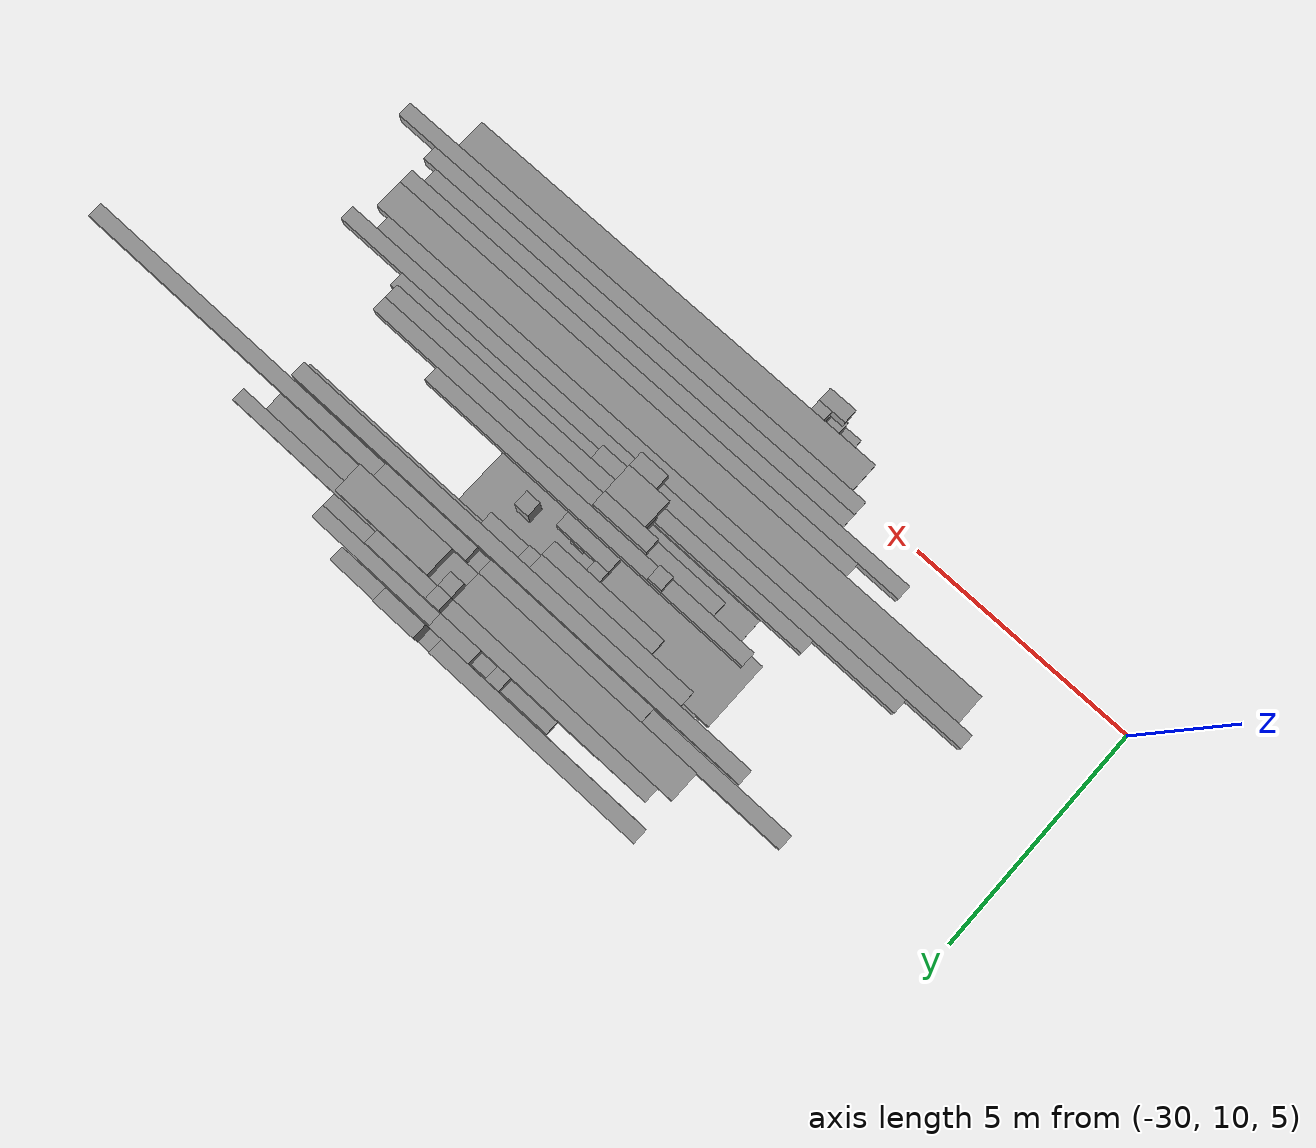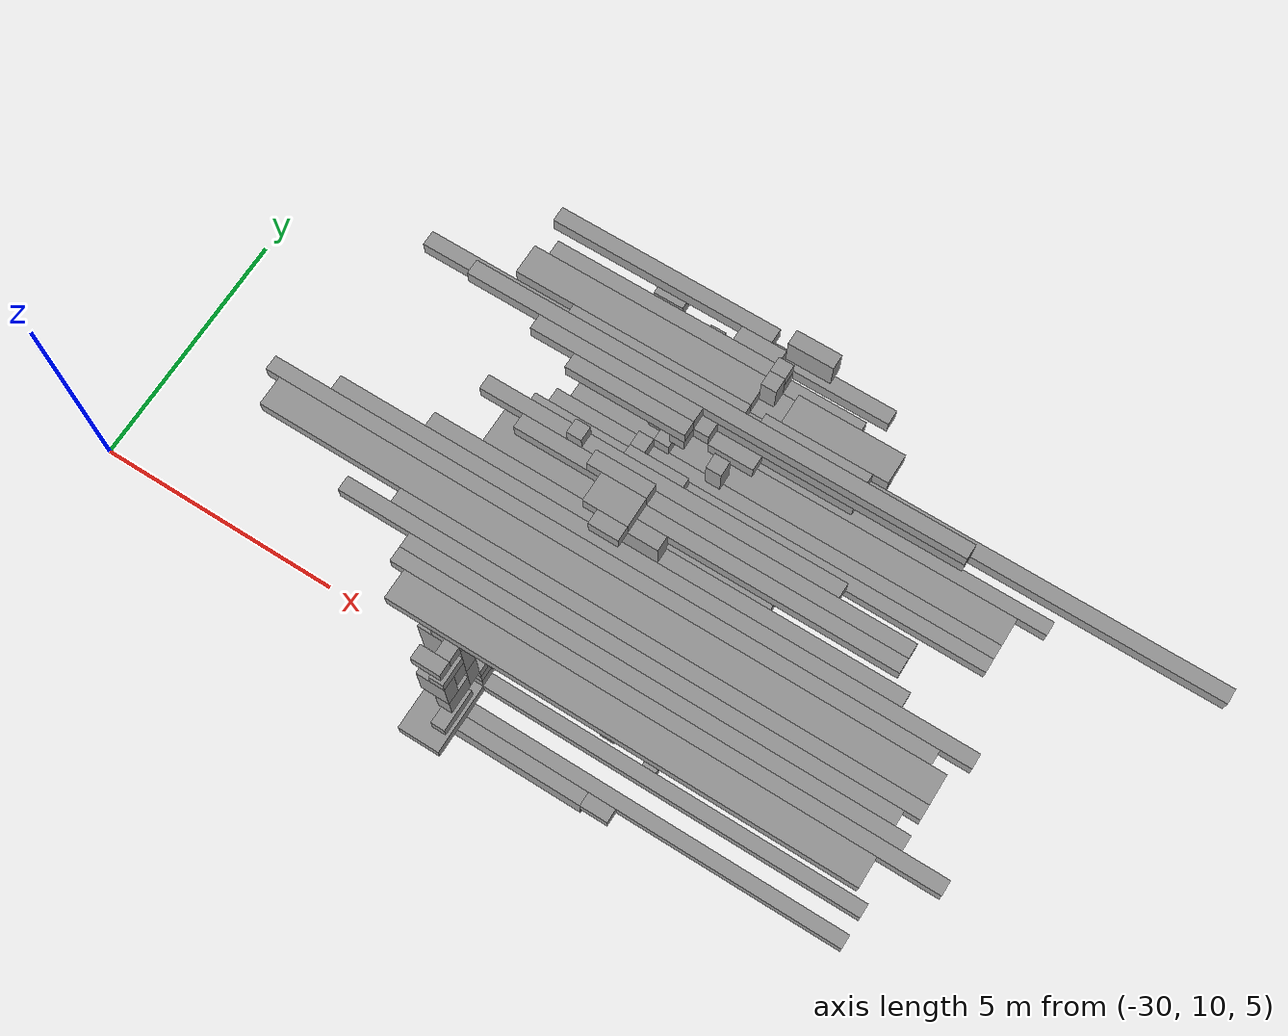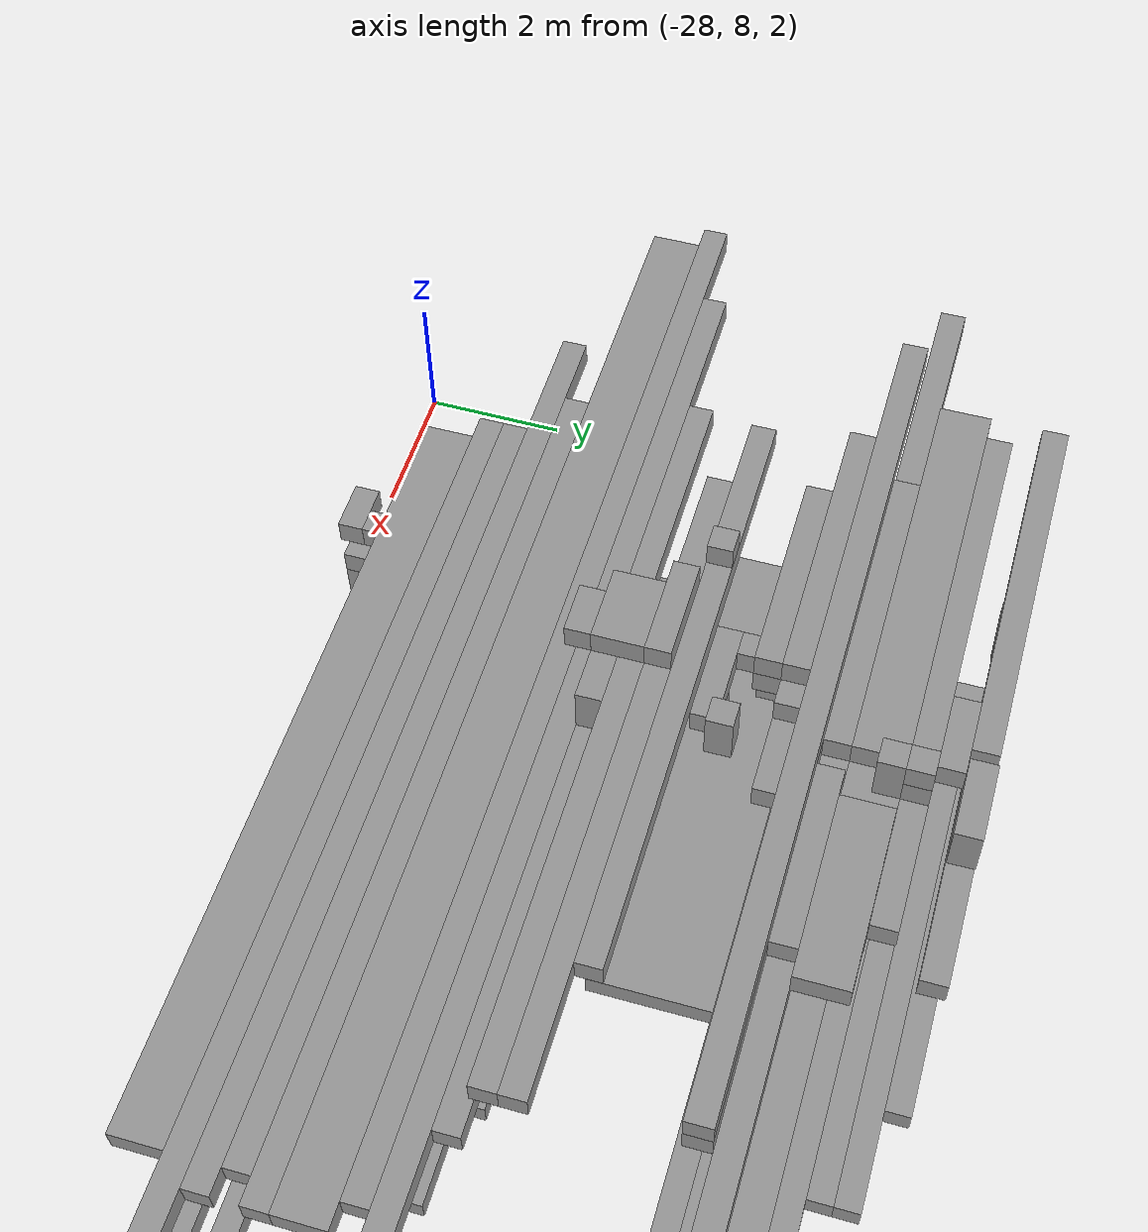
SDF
<sdf version="1.6">
 <world name="bt_world">
  <include><uri>model://sun</uri></include>
  <model name="obstacle_160">
   <static>true</static>
   <pose>-20.849999999999998 12.45 7.05 0 0 0</pose>
   <link name="link">
    <collision name="collision"><geometry><box><size>13.5 0.3 0.3</size></box></geometry></collision>
    <visual name="visual">
     <geometry><box><size>13.5 0.3 0.3</size></box></geometry>
     <material><ambient>0.5 0.5 0.5 1</ambient><diffuse>0.6 0.6 0.6 1</diffuse></material>
    </visual>
   </link>
  </model>
  <model name="obstacle_174">
   <static>true</static>
   <pose>-20.55 12.0 7.05 0 0 0</pose>
   <link name="link">
    <collision name="collision"><geometry><box><size>13.5 0.6 0.3</size></box></geometry></collision>
    <visual name="visual">
     <geometry><box><size>13.5 0.6 0.3</size></box></geometry>
     <material><ambient>0.5 0.5 0.5 1</ambient><diffuse>0.6 0.6 0.6 1</diffuse></material>
    </visual>
   </link>
  </model>
  <model name="obstacle_203">
   <static>true</static>
   <pose>-19.95 12.75 7.05 0 0 0</pose>
   <link name="link">
    <collision name="collision"><geometry><box><size>12.9 0.3 0.3</size></box></geometry></collision>
    <visual name="visual">
     <geometry><box><size>12.9 0.3 0.3</size></box></geometry>
     <material><ambient>0.5 0.5 0.5 1</ambient><diffuse>0.6 0.6 0.6 1</diffuse></material>
    </visual>
   </link>
  </model>
  <model name="obstacle_205">
   <static>true</static>
   <pose>-18.45 15.75 7.6499999999999995 0 0 0</pose>
   <link name="link">
    <collision name="collision">
     <geometry><box><size>15.899999999999999 0.3 0.3</size></box></geometry>
    </collision>
    <visual name="visual">
     <geometry><box><size>15.899999999999999 0.3 0.3</size></box></geometry>
     <material><ambient>0.5 0.5 0.5 1</ambient><diffuse>0.6 0.6 0.6 1</diffuse></material>
    </visual>
   </link>
  </model>
  <model name="obstacle_272">
   <static>true</static>
   <pose>-19.65 11.25 7.05 0 0 0</pose>
   <link name="link">
    <collision name="collision"><geometry><box><size>11.1 0.3 0.3</size></box></geometry></collision>
    <visual name="visual">
     <geometry><box><size>11.1 0.3 0.3</size></box></geometry>
     <material><ambient>0.5 0.5 0.5 1</ambient><diffuse>0.6 0.6 0.6 1</diffuse></material>
    </visual>
   </link>
  </model>
  <model name="obstacle_276">
   <static>true</static>
   <pose>-20.25 15.45 8.25 0 0 0</pose>
   <link name="link">
    <collision name="collision"><geometry><box><size>9.9 0.3 0.3</size></box></geometry></collision>
    <visual name="visual">
     <geometry><box><size>9.9 0.3 0.3</size></box></geometry>
     <material><ambient>0.5 0.5 0.5 1</ambient><diffuse>0.6 0.6 0.6 1</diffuse></material>
    </visual>
   </link>
  </model>
  <model name="obstacle_357">
   <static>true</static>
   <pose>-19.8 13.049999999999999 7.05 0 0 0</pose>
   <link name="link">
    <collision name="collision"><geometry><box><size>9.6 0.3 0.3</size></box></geometry></collision>
    <visual name="visual">
     <geometry><box><size>9.6 0.3 0.3</size></box></geometry>
     <material><ambient>0.5 0.5 0.5 1</ambient><diffuse>0.6 0.6 0.6 1</diffuse></material>
    </visual>
   </link>
  </model>
  <model name="obstacle_359">
   <static>true</static>
   <pose>-22.2 16.2 7.949999999999999 0 0 0</pose>
   <link name="link">
    <collision name="collision"><geometry><box><size>4.8 0.6 0.3</size></box></geometry></collision>
    <visual name="visual">
     <geometry><box><size>4.8 0.6 0.3</size></box></geometry>
     <material><ambient>0.5 0.5 0.5 1</ambient><diffuse>0.6 0.6 0.6 1</diffuse></material>
    </visual>
   </link>
  </model>
  <model name="obstacle_360">
   <static>true</static>
   <pose>-22.349999999999998 17.25 7.949999999999999 0 0 0</pose>
   <link name="link">
    <collision name="collision"><geometry><box><size>4.5 0.3 0.3</size></box></geometry></collision>
    <visual name="visual">
     <geometry><box><size>4.5 0.3 0.3</size></box></geometry>
     <material><ambient>0.5 0.5 0.5 1</ambient><diffuse>0.6 0.6 0.6 1</diffuse></material>
    </visual>
   </link>
  </model>
  <model name="obstacle_391">
   <static>true</static>
   <pose>-19.05 11.549999999999999 7.05 0 0 0</pose>
   <link name="link">
    <collision name="collision"><geometry><box><size>10.5 0.3 0.3</size></box></geometry></collision>
    <visual name="visual">
     <geometry><box><size>10.5 0.3 0.3</size></box></geometry>
     <material><ambient>0.5 0.5 0.5 1</ambient><diffuse>0.6 0.6 0.6 1</diffuse></material>
    </visual>
   </link>
  </model>
  <model name="obstacle_392">
   <static>true</static>
   <pose>-21.15 14.25 4.6499999999999995 0 0 0</pose>
   <link name="link">
    <collision name="collision"><geometry><box><size>6.3 1.5 0.3</size></box></geometry></collision>
    <visual name="visual">
     <geometry><box><size>6.3 1.5 0.3</size></box></geometry>
     <material><ambient>0.5 0.5 0.5 1</ambient><diffuse>0.6 0.6 0.6 1</diffuse></material>
    </visual>
   </link>
  </model>
  <model name="obstacle_394">
   <static>true</static>
   <pose>-21.9 16.65 7.949999999999999 0 0 0</pose>
   <link name="link">
    <collision name="collision"><geometry><box><size>4.8 0.3 0.3</size></box></geometry></collision>
    <visual name="visual">
     <geometry><box><size>4.8 0.3 0.3</size></box></geometry>
     <material><ambient>0.5 0.5 0.5 1</ambient><diffuse>0.6 0.6 0.6 1</diffuse></material>
    </visual>
   </link>
  </model>
  <model name="obstacle_418">
   <static>true</static>
   <pose>-20.4 13.95 7.6499999999999995 0 0 0</pose>
   <link name="link">
    <collision name="collision"><geometry><box><size>7.199999999999999 0.3 0.3</size></box></geometry></collision>
    <visual name="visual">
     <geometry><box><size>7.199999999999999 0.3 0.3</size></box></geometry>
     <material><ambient>0.5 0.5 0.5 1</ambient><diffuse>0.6 0.6 0.6 1</diffuse></material>
    </visual>
   </link>
  </model>
  <model name="obstacle_419">
   <static>true</static>
   <pose>-19.05 15.149999999999999 4.6499999999999995 0 0 0</pose>
   <link name="link">
    <collision name="collision"><geometry><box><size>9.9 0.3 0.3</size></box></geometry></collision>
    <visual name="visual">
     <geometry><box><size>9.9 0.3 0.3</size></box></geometry>
     <material><ambient>0.5 0.5 0.5 1</ambient><diffuse>0.6 0.6 0.6 1</diffuse></material>
    </visual>
   </link>
  </model>
  <model name="obstacle_451">
   <static>true</static>
   <pose>-18.3 10.65 7.05 0 0 0</pose>
   <link name="link">
    <collision name="collision">
     <geometry><box><size>10.799999999999999 0.3 0.3</size></box></geometry>
    </collision>
    <visual name="visual">
     <geometry><box><size>10.799999999999999 0.3 0.3</size></box></geometry>
     <material><ambient>0.5 0.5 0.5 1</ambient><diffuse>0.6 0.6 0.6 1</diffuse></material>
    </visual>
   </link>
  </model>
  <model name="obstacle_452">
   <static>true</static>
   <pose>-18.75 10.95 7.05 0 0 0</pose>
   <link name="link">
    <collision name="collision"><geometry><box><size>9.9 0.3 0.3</size></box></geometry></collision>
    <visual name="visual">
     <geometry><box><size>9.9 0.3 0.3</size></box></geometry>
     <material><ambient>0.5 0.5 0.5 1</ambient><diffuse>0.6 0.6 0.6 1</diffuse></material>
    </visual>
   </link>
  </model>
  <model name="obstacle_453">
   <static>true</static>
   <pose>-19.95 12.75 4.6499999999999995 0 0 0</pose>
   <link name="link">
    <collision name="collision"><geometry><box><size>7.5 0.3 0.3</size></box></geometry></collision>
    <visual name="visual">
     <geometry><box><size>7.5 0.3 0.3</size></box></geometry>
     <material><ambient>0.5 0.5 0.5 1</ambient><diffuse>0.6 0.6 0.6 1</diffuse></material>
    </visual>
   </link>
  </model>
  <model name="obstacle_454">
   <static>true</static>
   <pose>-21.15 13.2 4.6499999999999995 0 0 0</pose>
   <link name="link">
    <collision name="collision"><geometry><box><size>5.1 0.6 0.3</size></box></geometry></collision>
    <visual name="visual">
     <geometry><box><size>5.1 0.6 0.3</size></box></geometry>
     <material><ambient>0.5 0.5 0.5 1</ambient><diffuse>0.6 0.6 0.6 1</diffuse></material>
    </visual>
   </link>
  </model>
  <model name="obstacle_455">
   <static>true</static>
   <pose>-22.05 15.149999999999999 8.25 0 0 0</pose>
   <link name="link">
    <collision name="collision"><geometry><box><size>3.3 0.3 0.3</size></box></geometry></collision>
    <visual name="visual">
     <geometry><box><size>3.3 0.3 0.3</size></box></geometry>
     <material><ambient>0.5 0.5 0.5 1</ambient><diffuse>0.6 0.6 0.6 1</diffuse></material>
    </visual>
   </link>
  </model>
  <model name="obstacle_456">
   <static>true</static>
   <pose>-18.9 15.45 4.6499999999999995 0 0 0</pose>
   <link name="link">
    <collision name="collision"><geometry><box><size>9.6 0.3 0.3</size></box></geometry></collision>
    <visual name="visual">
     <geometry><box><size>9.6 0.3 0.3</size></box></geometry>
     <material><ambient>0.5 0.5 0.5 1</ambient><diffuse>0.6 0.6 0.6 1</diffuse></material>
    </visual>
   </link>
  </model>
  <model name="obstacle_457">
   <static>true</static>
   <pose>-20.849999999999998 16.65 7.6499999999999995 0 0 0</pose>
   <link name="link">
    <collision name="collision"><geometry><box><size>5.7 0.3 0.3</size></box></geometry></collision>
    <visual name="visual">
     <geometry><box><size>5.7 0.3 0.3</size></box></geometry>
     <material><ambient>0.5 0.5 0.5 1</ambient><diffuse>0.6 0.6 0.6 1</diffuse></material>
    </visual>
   </link>
  </model>
  <model name="obstacle_486">
   <static>true</static>
   <pose>-18.75 10.2 7.05 0 0 0</pose>
   <link name="link">
    <collision name="collision"><geometry><box><size>9.299999999999999 0.6 0.3</size></box></geometry></collision>
    <visual name="visual">
     <geometry><box><size>9.299999999999999 0.6 0.3</size></box></geometry>
     <material><ambient>0.5 0.5 0.5 1</ambient><diffuse>0.6 0.6 0.6 1</diffuse></material>
    </visual>
   </link>
  </model>
  <model name="obstacle_490">
   <static>true</static>
   <pose>-18.75 15.899999999999999 4.6499999999999995 0 0 0</pose>
   <link name="link">
    <collision name="collision"><geometry><box><size>9.299999999999999 0.6 0.3</size></box></geometry></collision>
    <visual name="visual">
     <geometry><box><size>9.299999999999999 0.6 0.3</size></box></geometry>
     <material><ambient>0.5 0.5 0.5 1</ambient><diffuse>0.6 0.6 0.6 1</diffuse></material>
    </visual>
   </link>
  </model>
  <model name="obstacle_491">
   <static>true</static>
   <pose>-21.599999999999998 15.75 7.949999999999999 0 0 0</pose>
   <link name="link">
    <collision name="collision">
     <geometry><box><size>3.5999999999999996 0.3 0.3</size></box></geometry>
    </collision>
    <visual name="visual">
     <geometry><box><size>3.5999999999999996 0.3 0.3</size></box></geometry>
     <material><ambient>0.5 0.5 0.5 1</ambient><diffuse>0.6 0.6 0.6 1</diffuse></material>
    </visual>
   </link>
  </model>
  <model name="obstacle_523">
   <static>true</static>
   <pose>-19.2 13.65 7.6499999999999995 0 0 0</pose>
   <link name="link">
    <collision name="collision"><geometry><box><size>7.8 0.3 0.3</size></box></geometry></collision>
    <visual name="visual">
     <geometry><box><size>7.8 0.3 0.3</size></box></geometry>
     <material><ambient>0.5 0.5 0.5 1</ambient><diffuse>0.6 0.6 0.6 1</diffuse></material>
    </visual>
   </link>
  </model>
  <model name="obstacle_524">
   <static>true</static>
   <pose>-18.3 16.349999999999998 4.6499999999999995 0 0 0</pose>
   <link name="link">
    <collision name="collision"><geometry><box><size>9.6 0.3 0.3</size></box></geometry></collision>
    <visual name="visual">
     <geometry><box><size>9.6 0.3 0.3</size></box></geometry>
     <material><ambient>0.5 0.5 0.5 1</ambient><diffuse>0.6 0.6 0.6 1</diffuse></material>
    </visual>
   </link>
  </model>
  <model name="obstacle_525">
   <static>true</static>
   <pose>-19.65 16.65 4.6499999999999995 0 0 0</pose>
   <link name="link">
    <collision name="collision">
     <geometry><box><size>6.8999999999999995 0.3 0.3</size></box></geometry>
    </collision>
    <visual name="visual">
     <geometry><box><size>6.8999999999999995 0.3 0.3</size></box></geometry>
     <material><ambient>0.5 0.5 0.5 1</ambient><diffuse>0.6 0.6 0.6 1</diffuse></material>
    </visual>
   </link>
  </model>
  <model name="obstacle_536">
   <static>true</static>
   <pose>-22.349999999999998 9.45 3.4499999999999997 0 0 0</pose>
   <link name="link">
    <collision name="collision">
     <geometry><box><size>0.8999999999999999 1.5 0.3</size></box></geometry>
    </collision>
    <visual name="visual">
     <geometry><box><size>0.8999999999999999 1.5 0.3</size></box></geometry>
     <material><ambient>0.5 0.5 0.5 1</ambient><diffuse>0.6 0.6 0.6 1</diffuse></material>
    </visual>
   </link>
  </model>
  <model name="obstacle_545">
   <static>true</static>
   <pose>-22.349999999999998 10.049999999999999 6.0 0 0 0</pose>
   <link name="link">
    <collision name="collision">
     <geometry><box><size>0.8999999999999999 0.3 1.2</size></box></geometry>
    </collision>
    <visual name="visual">
     <geometry><box><size>0.8999999999999999 0.3 1.2</size></box></geometry>
     <material><ambient>0.5 0.5 0.5 1</ambient><diffuse>0.6 0.6 0.6 1</diffuse></material>
    </visual>
   </link>
  </model>
  <model name="obstacle_546">
   <static>true</static>
   <pose>-22.349999999999998 10.5 3.75 0 0 0</pose>
   <link name="link">
    <collision name="collision">
     <geometry><box><size>0.8999999999999999 0.6 0.3</size></box></geometry>
    </collision>
    <visual name="visual">
     <geometry><box><size>0.8999999999999999 0.6 0.3</size></box></geometry>
     <material><ambient>0.5 0.5 0.5 1</ambient><diffuse>0.6 0.6 0.6 1</diffuse></material>
    </visual>
   </link>
  </model>
  <model name="obstacle_553">
   <static>true</static>
   <pose>-20.25 11.549999999999999 4.05 0 0 0</pose>
   <link name="link">
    <collision name="collision"><geometry><box><size>5.1 0.3 0.3</size></box></geometry></collision>
    <visual name="visual">
     <geometry><box><size>5.1 0.3 0.3</size></box></geometry>
     <material><ambient>0.5 0.5 0.5 1</ambient><diffuse>0.6 0.6 0.6 1</diffuse></material>
    </visual>
   </link>
  </model>
  <model name="obstacle_558">
   <static>true</static>
   <pose>-21.599999999999998 14.85 8.25 0 0 0</pose>
   <link name="link">
    <collision name="collision"><geometry><box><size>2.4 0.3 0.3</size></box></geometry></collision>
    <visual name="visual">
     <geometry><box><size>2.4 0.3 0.3</size></box></geometry>
     <material><ambient>0.5 0.5 0.5 1</ambient><diffuse>0.6 0.6 0.6 1</diffuse></material>
    </visual>
   </link>
  </model>
  <model name="obstacle_559">
   <static>true</static>
   <pose>-21.9 15.45 7.8 0 0 0</pose>
   <link name="link">
    <collision name="collision">
     <geometry><box><size>1.7999999999999998 0.3 0.6</size></box></geometry>
    </collision>
    <visual name="visual">
     <geometry><box><size>1.7999999999999998 0.3 0.6</size></box></geometry>
     <material><ambient>0.5 0.5 0.5 1</ambient><diffuse>0.6 0.6 0.6 1</diffuse></material>
    </visual>
   </link>
  </model>
  <model name="obstacle_580">
   <static>true</static>
   <pose>-22.2 9.45 5.55 0 0 0</pose>
   <link name="link">
    <collision name="collision">
     <geometry><box><size>0.6 0.3 0.8999999999999999</size></box></geometry>
    </collision>
    <visual name="visual">
     <geometry><box><size>0.6 0.3 0.8999999999999999</size></box></geometry>
     <material><ambient>0.5 0.5 0.5 1</ambient><diffuse>0.6 0.6 0.6 1</diffuse></material>
    </visual>
   </link>
  </model>
  <model name="obstacle_581">
   <static>true</static>
   <pose>-22.2 9.45 6.75 0 0 0</pose>
   <link name="link">
    <collision name="collision"><geometry><box><size>0.6 0.3 0.3</size></box></geometry></collision>
    <visual name="visual">
     <geometry><box><size>0.6 0.3 0.3</size></box></geometry>
     <material><ambient>0.5 0.5 0.5 1</ambient><diffuse>0.6 0.6 0.6 1</diffuse></material>
    </visual>
   </link>
  </model>
  <model name="obstacle_582">
   <static>true</static>
   <pose>-22.349999999999998 10.049999999999999 3.75 0 0 0</pose>
   <link name="link">
    <collision name="collision"><geometry><box><size>0.3 0.3 0.3</size></box></geometry></collision>
    <visual name="visual">
     <geometry><box><size>0.3 0.3 0.3</size></box></geometry>
     <material><ambient>0.5 0.5 0.5 1</ambient><diffuse>0.6 0.6 0.6 1</diffuse></material>
    </visual>
   </link>
  </model>
  <model name="obstacle_583">
   <static>true</static>
   <pose>-22.349999999999998 10.2 4.35 0 0 0</pose>
   <link name="link">
    <collision name="collision"><geometry><box><size>0.3 0.6 0.3</size></box></geometry></collision>
    <visual name="visual">
     <geometry><box><size>0.3 0.6 0.3</size></box></geometry>
     <material><ambient>0.5 0.5 0.5 1</ambient><diffuse>0.6 0.6 0.6 1</diffuse></material>
    </visual>
   </link>
  </model>
  <model name="obstacle_584">
   <static>true</static>
   <pose>-22.2 10.049999999999999 4.95 0 0 0</pose>
   <link name="link">
    <collision name="collision">
     <geometry><box><size>0.6 0.3 0.8999999999999999</size></box></geometry>
    </collision>
    <visual name="visual">
     <geometry><box><size>0.6 0.3 0.8999999999999999</size></box></geometry>
     <material><ambient>0.5 0.5 0.5 1</ambient><diffuse>0.6 0.6 0.6 1</diffuse></material>
    </visual>
   </link>
  </model>
  <model name="obstacle_585">
   <static>true</static>
   <pose>-22.2 10.049999999999999 6.75 0 0 0</pose>
   <link name="link">
    <collision name="collision"><geometry><box><size>0.6 0.3 0.3</size></box></geometry></collision>
    <visual name="visual">
     <geometry><box><size>0.6 0.3 0.3</size></box></geometry>
     <material><ambient>0.5 0.5 0.5 1</ambient><diffuse>0.6 0.6 0.6 1</diffuse></material>
    </visual>
   </link>
  </model>
  <model name="obstacle_586">
   <static>true</static>
   <pose>-22.2 10.35 4.05 0 0 0</pose>
   <link name="link">
    <collision name="collision"><geometry><box><size>0.6 0.3 0.3</size></box></geometry></collision>
    <visual name="visual">
     <geometry><box><size>0.6 0.3 0.3</size></box></geometry>
     <material><ambient>0.5 0.5 0.5 1</ambient><diffuse>0.6 0.6 0.6 1</diffuse></material>
    </visual>
   </link>
  </model>
  <model name="obstacle_587">
   <static>true</static>
   <pose>-22.349999999999998 10.5 4.95 0 0 0</pose>
   <link name="link">
    <collision name="collision"><geometry><box><size>0.3 0.6 0.3</size></box></geometry></collision>
    <visual name="visual">
     <geometry><box><size>0.3 0.6 0.3</size></box></geometry>
     <material><ambient>0.5 0.5 0.5 1</ambient><diffuse>0.6 0.6 0.6 1</diffuse></material>
    </visual>
   </link>
  </model>
  <model name="obstacle_588">
   <static>true</static>
   <pose>-22.349999999999998 10.95 5.25 0 0 0</pose>
   <link name="link">
    <collision name="collision"><geometry><box><size>0.3 0.3 0.3</size></box></geometry></collision>
    <visual name="visual">
     <geometry><box><size>0.3 0.3 0.3</size></box></geometry>
     <material><ambient>0.5 0.5 0.5 1</ambient><diffuse>0.6 0.6 0.6 1</diffuse></material>
    </visual>
   </link>
  </model>
  <model name="obstacle_589">
   <static>true</static>
   <pose>-22.349999999999998 11.25 5.55 0 0 0</pose>
   <link name="link">
    <collision name="collision"><geometry><box><size>0.3 0.3 0.3</size></box></geometry></collision>
    <visual name="visual">
     <geometry><box><size>0.3 0.3 0.3</size></box></geometry>
     <material><ambient>0.5 0.5 0.5 1</ambient><diffuse>0.6 0.6 0.6 1</diffuse></material>
    </visual>
   </link>
  </model>
  <model name="obstacle_590">
   <static>true</static>
   <pose>-22.349999999999998 11.25 6.75 0 0 0</pose>
   <link name="link">
    <collision name="collision"><geometry><box><size>0.3 0.3 0.3</size></box></geometry></collision>
    <visual name="visual">
     <geometry><box><size>0.3 0.3 0.3</size></box></geometry>
     <material><ambient>0.5 0.5 0.5 1</ambient><diffuse>0.6 0.6 0.6 1</diffuse></material>
    </visual>
   </link>
  </model>
  <model name="obstacle_591">
   <static>true</static>
   <pose>-22.349999999999998 11.7 6.45 0 0 0</pose>
   <link name="link">
    <collision name="collision"><geometry><box><size>0.3 0.6 0.3</size></box></geometry></collision>
    <visual name="visual">
     <geometry><box><size>0.3 0.6 0.3</size></box></geometry>
     <material><ambient>0.5 0.5 0.5 1</ambient><diffuse>0.6 0.6 0.6 1</diffuse></material>
    </visual>
   </link>
  </model>
  <model name="obstacle_592">
   <static>true</static>
   <pose>-22.349999999999998 12.15 5.25 0 0 0</pose>
   <link name="link">
    <collision name="collision"><geometry><box><size>0.3 0.3 0.3</size></box></geometry></collision>
    <visual name="visual">
     <geometry><box><size>0.3 0.3 0.3</size></box></geometry>
     <material><ambient>0.5 0.5 0.5 1</ambient><diffuse>0.6 0.6 0.6 1</diffuse></material>
    </visual>
   </link>
  </model>
  <model name="obstacle_593">
   <static>true</static>
   <pose>-22.349999999999998 12.45 5.55 0 0 0</pose>
   <link name="link">
    <collision name="collision"><geometry><box><size>0.3 0.3 0.3</size></box></geometry></collision>
    <visual name="visual">
     <geometry><box><size>0.3 0.3 0.3</size></box></geometry>
     <material><ambient>0.5 0.5 0.5 1</ambient><diffuse>0.6 0.6 0.6 1</diffuse></material>
    </visual>
   </link>
  </model>
  <model name="obstacle_594">
   <static>true</static>
   <pose>-22.2 17.25 7.35 0 0 0</pose>
   <link name="link">
    <collision name="collision"><geometry><box><size>0.6 0.3 0.3</size></box></geometry></collision>
    <visual name="visual">
     <geometry><box><size>0.6 0.3 0.3</size></box></geometry>
     <material><ambient>0.5 0.5 0.5 1</ambient><diffuse>0.6 0.6 0.6 1</diffuse></material>
    </visual>
   </link>
  </model>
  <model name="obstacle_638">
   <static>true</static>
   <pose>-22.05 9.45 4.05 0 0 0</pose>
   <link name="link">
    <collision name="collision">
     <geometry><box><size>0.3 0.8999999999999999 0.3</size></box></geometry>
    </collision>
    <visual name="visual">
     <geometry><box><size>0.3 0.8999999999999999 0.3</size></box></geometry>
     <material><ambient>0.5 0.5 0.5 1</ambient><diffuse>0.6 0.6 0.6 1</diffuse></material>
    </visual>
   </link>
  </model>
  <model name="obstacle_642">
   <static>true</static>
   <pose>-20.7 9.45 3.0 0 0 0</pose>
   <link name="link">
    <collision name="collision"><geometry><box><size>3.0 0.3 0.6</size></box></geometry></collision>
    <visual name="visual">
     <geometry><box><size>3.0 0.3 0.6</size></box></geometry>
     <material><ambient>0.5 0.5 0.5 1</ambient><diffuse>0.6 0.6 0.6 1</diffuse></material>
    </visual>
   </link>
  </model>
  <model name="obstacle_643">
   <static>true</static>
   <pose>-22.05 9.6 4.8 0 0 0</pose>
   <link name="link">
    <collision name="collision"><geometry><box><size>0.3 0.6 0.6</size></box></geometry></collision>
    <visual name="visual">
     <geometry><box><size>0.3 0.6 0.6</size></box></geometry>
     <material><ambient>0.5 0.5 0.5 1</ambient><diffuse>0.6 0.6 0.6 1</diffuse></material>
    </visual>
   </link>
  </model>
  <model name="obstacle_644">
   <static>true</static>
   <pose>-22.05 9.6 6.1499999999999995 0 0 0</pose>
   <link name="link">
    <collision name="collision"><geometry><box><size>0.3 0.6 0.3</size></box></geometry></collision>
    <visual name="visual">
     <geometry><box><size>0.3 0.6 0.3</size></box></geometry>
     <material><ambient>0.5 0.5 0.5 1</ambient><diffuse>0.6 0.6 0.6 1</diffuse></material>
    </visual>
   </link>
  </model>
  <model name="obstacle_645">
   <static>true</static>
   <pose>-18.0 9.75 3.15 0 0 0</pose>
   <link name="link">
    <collision name="collision"><geometry><box><size>8.4 0.3 0.3</size></box></geometry></collision>
    <visual name="visual">
     <geometry><box><size>8.4 0.3 0.3</size></box></geometry>
     <material><ambient>0.5 0.5 0.5 1</ambient><diffuse>0.6 0.6 0.6 1</diffuse></material>
    </visual>
   </link>
  </model>
  <model name="obstacle_646">
   <static>true</static>
   <pose>-22.05 9.75 5.7 0 0 0</pose>
   <link name="link">
    <collision name="collision"><geometry><box><size>0.3 0.3 0.6</size></box></geometry></collision>
    <visual name="visual">
     <geometry><box><size>0.3 0.3 0.6</size></box></geometry>
     <material><ambient>0.5 0.5 0.5 1</ambient><diffuse>0.6 0.6 0.6 1</diffuse></material>
    </visual>
   </link>
  </model>
  <model name="obstacle_647">
   <static>true</static>
   <pose>-22.05 9.75 6.75 0 0 0</pose>
   <link name="link">
    <collision name="collision"><geometry><box><size>0.3 0.3 0.3</size></box></geometry></collision>
    <visual name="visual">
     <geometry><box><size>0.3 0.3 0.3</size></box></geometry>
     <material><ambient>0.5 0.5 0.5 1</ambient><diffuse>0.6 0.6 0.6 1</diffuse></material>
    </visual>
   </link>
  </model>
  <model name="obstacle_648">
   <static>true</static>
   <pose>-18.0 10.35 3.4499999999999997 0 0 0</pose>
   <link name="link">
    <collision name="collision"><geometry><box><size>8.4 0.3 0.3</size></box></geometry></collision>
    <visual name="visual">
     <geometry><box><size>8.4 0.3 0.3</size></box></geometry>
     <material><ambient>0.5 0.5 0.5 1</ambient><diffuse>0.6 0.6 0.6 1</diffuse></material>
    </visual>
   </link>
  </model>
  <model name="obstacle_649">
   <static>true</static>
   <pose>-22.05 10.35 4.35 0 0 0</pose>
   <link name="link">
    <collision name="collision"><geometry><box><size>0.3 0.3 0.3</size></box></geometry></collision>
    <visual name="visual">
     <geometry><box><size>0.3 0.3 0.3</size></box></geometry>
     <material><ambient>0.5 0.5 0.5 1</ambient><diffuse>0.6 0.6 0.6 1</diffuse></material>
    </visual>
   </link>
  </model>
  <model name="obstacle_650">
   <static>true</static>
   <pose>-22.05 10.65 6.45 0 0 0</pose>
   <link name="link">
    <collision name="collision">
     <geometry><box><size>0.3 0.8999999999999999 0.3</size></box></geometry>
    </collision>
    <visual name="visual">
     <geometry><box><size>0.3 0.8999999999999999 0.3</size></box></geometry>
     <material><ambient>0.5 0.5 0.5 1</ambient><diffuse>0.6 0.6 0.6 1</diffuse></material>
    </visual>
   </link>
  </model>
  <model name="obstacle_651">
   <static>true</static>
   <pose>-22.05 11.25 4.6499999999999995 0 0 0</pose>
   <link name="link">
    <collision name="collision"><geometry><box><size>0.3 0.3 0.3</size></box></geometry></collision>
    <visual name="visual">
     <geometry><box><size>0.3 0.3 0.3</size></box></geometry>
     <material><ambient>0.5 0.5 0.5 1</ambient><diffuse>0.6 0.6 0.6 1</diffuse></material>
    </visual>
   </link>
  </model>
  <model name="obstacle_654">
   <static>true</static>
   <pose>-22.05 11.85 5.25 0 0 0</pose>
   <link name="link">
    <collision name="collision"><geometry><box><size>0.3 0.3 0.3</size></box></geometry></collision>
    <visual name="visual">
     <geometry><box><size>0.3 0.3 0.3</size></box></geometry>
     <material><ambient>0.5 0.5 0.5 1</ambient><diffuse>0.6 0.6 0.6 1</diffuse></material>
    </visual>
   </link>
  </model>
  <model name="obstacle_655">
   <static>true</static>
   <pose>-18.599999999999998 12.45 4.6499999999999995 0 0 0</pose>
   <link name="link">
    <collision name="collision"><geometry><box><size>7.199999999999999 0.3 0.3</size></box></geometry></collision>
    <visual name="visual">
     <geometry><box><size>7.199999999999999 0.3 0.3</size></box></geometry>
     <material><ambient>0.5 0.5 0.5 1</ambient><diffuse>0.6 0.6 0.6 1</diffuse></material>
    </visual>
   </link>
  </model>
  <model name="obstacle_656">
   <static>true</static>
   <pose>-22.05 13.95 7.949999999999999 0 0 0</pose>
   <link name="link">
    <collision name="collision"><geometry><box><size>0.3 0.3 0.3</size></box></geometry></collision>
    <visual name="visual">
     <geometry><box><size>0.3 0.3 0.3</size></box></geometry>
     <material><ambient>0.5 0.5 0.5 1</ambient><diffuse>0.6 0.6 0.6 1</diffuse></material>
    </visual>
   </link>
  </model>
  <model name="obstacle_657">
   <static>true</static>
   <pose>-19.2 16.95 4.6499999999999995 0 0 0</pose>
   <link name="link">
    <collision name="collision"><geometry><box><size>6.0 0.3 0.3</size></box></geometry></collision>
    <visual name="visual">
     <geometry><box><size>6.0 0.3 0.3</size></box></geometry>
     <material><ambient>0.5 0.5 0.5 1</ambient><diffuse>0.6 0.6 0.6 1</diffuse></material>
    </visual>
   </link>
  </model>
  <model name="obstacle_658">
   <static>true</static>
   <pose>-19.8 17.25 4.6499999999999995 0 0 0</pose>
   <link name="link">
    <collision name="collision"><geometry><box><size>4.8 0.3 0.3</size></box></geometry></collision>
    <visual name="visual">
     <geometry><box><size>4.8 0.3 0.3</size></box></geometry>
     <material><ambient>0.5 0.5 0.5 1</ambient><diffuse>0.6 0.6 0.6 1</diffuse></material>
    </visual>
   </link>
  </model>
  <model name="obstacle_702">
   <static>true</static>
   <pose>-21.0 15.149999999999999 7.949999999999999 0 0 0</pose>
   <link name="link">
    <collision name="collision">
     <geometry><box><size>1.7999999999999998 0.3 0.3</size></box></geometry>
    </collision>
    <visual name="visual">
     <geometry><box><size>1.7999999999999998 0.3 0.3</size></box></geometry>
     <material><ambient>0.5 0.5 0.5 1</ambient><diffuse>0.6 0.6 0.6 1</diffuse></material>
    </visual>
   </link>
  </model>
  <model name="obstacle_739">
   <static>true</static>
   <pose>-21.0 13.65 7.949999999999999 0 0 0</pose>
   <link name="link">
    <collision name="collision"><geometry><box><size>1.2 0.3 0.3</size></box></geometry></collision>
    <visual name="visual">
     <geometry><box><size>1.2 0.3 0.3</size></box></geometry>
     <material><ambient>0.5 0.5 0.5 1</ambient><diffuse>0.6 0.6 0.6 1</diffuse></material>
    </visual>
   </link>
  </model>
  <model name="obstacle_788">
   <static>true</static>
   <pose>-21.15 9.75 2.85 0 0 0</pose>
   <link name="link">
    <collision name="collision"><geometry><box><size>0.3 0.3 0.3</size></box></geometry></collision>
    <visual name="visual">
     <geometry><box><size>0.3 0.3 0.3</size></box></geometry>
     <material><ambient>0.5 0.5 0.5 1</ambient><diffuse>0.6 0.6 0.6 1</diffuse></material>
    </visual>
   </link>
  </model>
  <model name="obstacle_789">
   <static>true</static>
   <pose>-20.849999999999998 13.2 7.949999999999999 0 0 0</pose>
   <link name="link">
    <collision name="collision">
     <geometry><box><size>0.8999999999999999 0.6 0.3</size></box></geometry>
    </collision>
    <visual name="visual">
     <geometry><box><size>0.8999999999999999 0.6 0.3</size></box></geometry>
     <material><ambient>0.5 0.5 0.5 1</ambient><diffuse>0.6 0.6 0.6 1</diffuse></material>
    </visual>
   </link>
  </model>
  <model name="obstacle_790">
   <static>true</static>
   <pose>-18.3 13.35 7.6499999999999995 0 0 0</pose>
   <link name="link">
    <collision name="collision"><geometry><box><size>6.0 0.3 0.3</size></box></geometry></collision>
    <visual name="visual">
     <geometry><box><size>6.0 0.3 0.3</size></box></geometry>
     <material><ambient>0.5 0.5 0.5 1</ambient><diffuse>0.6 0.6 0.6 1</diffuse></material>
    </visual>
   </link>
  </model>
  <model name="obstacle_791">
   <static>true</static>
   <pose>-20.7 14.25 7.35 0 0 0</pose>
   <link name="link">
    <collision name="collision"><geometry><box><size>1.2 0.3 0.3</size></box></geometry></collision>
    <visual name="visual">
     <geometry><box><size>1.2 0.3 0.3</size></box></geometry>
     <material><ambient>0.5 0.5 0.5 1</ambient><diffuse>0.6 0.6 0.6 1</diffuse></material>
    </visual>
   </link>
  </model>
  <model name="obstacle_792">
   <static>true</static>
   <pose>-21.15 14.549999999999999 7.35 0 0 0</pose>
   <link name="link">
    <collision name="collision"><geometry><box><size>0.3 0.3 0.3</size></box></geometry></collision>
    <visual name="visual">
     <geometry><box><size>0.3 0.3 0.3</size></box></geometry>
     <material><ambient>0.5 0.5 0.5 1</ambient><diffuse>0.6 0.6 0.6 1</diffuse></material>
    </visual>
   </link>
  </model>
  <model name="obstacle_793">
   <static>true</static>
   <pose>-21.0 15.149999999999999 7.35 0 0 0</pose>
   <link name="link">
    <collision name="collision"><geometry><box><size>0.6 0.3 0.3</size></box></geometry></collision>
    <visual name="visual">
     <geometry><box><size>0.6 0.3 0.3</size></box></geometry>
     <material><ambient>0.5 0.5 0.5 1</ambient><diffuse>0.6 0.6 0.6 1</diffuse></material>
    </visual>
   </link>
  </model>
  <model name="obstacle_794">
   <static>true</static>
   <pose>-21.15 15.75 7.35 0 0 0</pose>
   <link name="link">
    <collision name="collision">
     <geometry><box><size>0.3 0.8999999999999999 0.3</size></box></geometry>
    </collision>
    <visual name="visual">
     <geometry><box><size>0.3 0.8999999999999999 0.3</size></box></geometry>
     <material><ambient>0.5 0.5 0.5 1</ambient><diffuse>0.6 0.6 0.6 1</diffuse></material>
    </visual>
   </link>
  </model>
  <model name="obstacle_795">
   <static>true</static>
   <pose>-20.849999999999998 16.2 7.6499999999999995 0 0 0</pose>
   <link name="link">
    <collision name="collision">
     <geometry><box><size>0.8999999999999999 0.6 0.3</size></box></geometry>
    </collision>
    <visual name="visual">
     <geometry><box><size>0.8999999999999999 0.6 0.3</size></box></geometry>
     <material><ambient>0.5 0.5 0.5 1</ambient><diffuse>0.6 0.6 0.6 1</diffuse></material>
    </visual>
   </link>
  </model>
  <model name="obstacle_796">
   <static>true</static>
   <pose>-21.15 16.95 7.35 0 0 0</pose>
   <link name="link">
    <collision name="collision"><geometry><box><size>0.3 0.3 0.3</size></box></geometry></collision>
    <visual name="visual">
     <geometry><box><size>0.3 0.3 0.3</size></box></geometry>
     <material><ambient>0.5 0.5 0.5 1</ambient><diffuse>0.6 0.6 0.6 1</diffuse></material>
    </visual>
   </link>
  </model>
  <model name="obstacle_836">
   <static>true</static>
   <pose>-20.7 12.75 7.949999999999999 0 0 0</pose>
   <link name="link">
    <collision name="collision"><geometry><box><size>0.6 0.3 0.3</size></box></geometry></collision>
    <visual name="visual">
     <geometry><box><size>0.6 0.3 0.3</size></box></geometry>
     <material><ambient>0.5 0.5 0.5 1</ambient><diffuse>0.6 0.6 0.6 1</diffuse></material>
    </visual>
   </link>
  </model>
  <model name="obstacle_837">
   <static>true</static>
   <pose>-20.4 13.049999999999999 7.5 0 0 0</pose>
   <link name="link">
    <collision name="collision"><geometry><box><size>1.2 0.3 0.6</size></box></geometry></collision>
    <visual name="visual">
     <geometry><box><size>1.2 0.3 0.6</size></box></geometry>
     <material><ambient>0.5 0.5 0.5 1</ambient><diffuse>0.6 0.6 0.6 1</diffuse></material>
    </visual>
   </link>
  </model>
  <model name="obstacle_838">
   <static>true</static>
   <pose>-20.849999999999998 13.799999999999999 7.35 0 0 0</pose>
   <link name="link">
    <collision name="collision"><geometry><box><size>0.3 0.6 0.3</size></box></geometry></collision>
    <visual name="visual">
     <geometry><box><size>0.3 0.6 0.3</size></box></geometry>
     <material><ambient>0.5 0.5 0.5 1</ambient><diffuse>0.6 0.6 0.6 1</diffuse></material>
    </visual>
   </link>
  </model>
  <model name="obstacle_839">
   <static>true</static>
   <pose>-20.849999999999998 14.85 7.35 0 0 0</pose>
   <link name="link">
    <collision name="collision"><geometry><box><size>0.3 0.3 0.3</size></box></geometry></collision>
    <visual name="visual">
     <geometry><box><size>0.3 0.3 0.3</size></box></geometry>
     <material><ambient>0.5 0.5 0.5 1</ambient><diffuse>0.6 0.6 0.6 1</diffuse></material>
    </visual>
   </link>
  </model>
  <model name="obstacle_840">
   <static>true</static>
   <pose>-20.849999999999998 15.149999999999999 7.6499999999999995 0 0 0</pose>
   <link name="link">
    <collision name="collision"><geometry><box><size>0.3 0.3 0.3</size></box></geometry></collision>
    <visual name="visual">
     <geometry><box><size>0.3 0.3 0.3</size></box></geometry>
     <material><ambient>0.5 0.5 0.5 1</ambient><diffuse>0.6 0.6 0.6 1</diffuse></material>
    </visual>
   </link>
  </model>
  <model name="obstacle_841">
   <static>true</static>
   <pose>-18.15 15.45 7.949999999999999 0 0 0</pose>
   <link name="link">
    <collision name="collision"><geometry><box><size>5.7 0.3 0.3</size></box></geometry></collision>
    <visual name="visual">
     <geometry><box><size>5.7 0.3 0.3</size></box></geometry>
     <material><ambient>0.5 0.5 0.5 1</ambient><diffuse>0.6 0.6 0.6 1</diffuse></material>
    </visual>
   </link>
  </model>
  <model name="obstacle_842">
   <static>true</static>
   <pose>-20.849999999999998 15.75 7.35 0 0 0</pose>
   <link name="link">
    <collision name="collision"><geometry><box><size>0.3 0.3 0.3</size></box></geometry></collision>
    <visual name="visual">
     <geometry><box><size>0.3 0.3 0.3</size></box></geometry>
     <material><ambient>0.5 0.5 0.5 1</ambient><diffuse>0.6 0.6 0.6 1</diffuse></material>
    </visual>
   </link>
  </model>
  <model name="obstacle_843">
   <static>true</static>
   <pose>-20.849999999999998 16.65 7.35 0 0 0</pose>
   <link name="link">
    <collision name="collision"><geometry><box><size>0.3 0.3 0.3</size></box></geometry></collision>
    <visual name="visual">
     <geometry><box><size>0.3 0.3 0.3</size></box></geometry>
     <material><ambient>0.5 0.5 0.5 1</ambient><diffuse>0.6 0.6 0.6 1</diffuse></material>
    </visual>
   </link>
  </model>
  <model name="obstacle_890">
   <static>true</static>
   <pose>-20.55 14.25 7.05 0 0 0</pose>
   <link name="link">
    <collision name="collision"><geometry><box><size>0.3 0.3 0.3</size></box></geometry></collision>
    <visual name="visual">
     <geometry><box><size>0.3 0.3 0.3</size></box></geometry>
     <material><ambient>0.5 0.5 0.5 1</ambient><diffuse>0.6 0.6 0.6 1</diffuse></material>
    </visual>
   </link>
  </model>
  <model name="obstacle_892">
   <static>true</static>
   <pose>-20.55 14.85 7.949999999999999 0 0 0</pose>
   <link name="link">
    <collision name="collision"><geometry><box><size>0.3 0.3 0.3</size></box></geometry></collision>
    <visual name="visual">
     <geometry><box><size>0.3 0.3 0.3</size></box></geometry>
     <material><ambient>0.5 0.5 0.5 1</ambient><diffuse>0.6 0.6 0.6 1</diffuse></material>
    </visual>
   </link>
  </model>
  <model name="obstacle_893">
   <static>true</static>
   <pose>-19.05 15.45 7.6499999999999995 0 0 0</pose>
   <link name="link">
    <collision name="collision"><geometry><box><size>3.3 0.3 0.3</size></box></geometry></collision>
    <visual name="visual">
     <geometry><box><size>3.3 0.3 0.3</size></box></geometry>
     <material><ambient>0.5 0.5 0.5 1</ambient><diffuse>0.6 0.6 0.6 1</diffuse></material>
    </visual>
   </link>
  </model>
  <model name="obstacle_895">
   <static>true</static>
   <pose>-20.25 16.95 7.949999999999999 0 0 0</pose>
   <link name="link">
    <collision name="collision">
     <geometry><box><size>0.8999999999999999 0.3 0.3</size></box></geometry>
    </collision>
    <visual name="visual">
     <geometry><box><size>0.8999999999999999 0.3 0.3</size></box></geometry>
     <material><ambient>0.5 0.5 0.5 1</ambient><diffuse>0.6 0.6 0.6 1</diffuse></material>
    </visual>
   </link>
  </model>
  <model name="obstacle_896">
   <static>true</static>
   <pose>-20.55 17.25 7.199999999999999 0 0 0</pose>
   <link name="link">
    <collision name="collision"><geometry><box><size>0.3 0.3 0.6</size></box></geometry></collision>
    <visual name="visual">
     <geometry><box><size>0.3 0.3 0.6</size></box></geometry>
     <material><ambient>0.5 0.5 0.5 1</ambient><diffuse>0.6 0.6 0.6 1</diffuse></material>
    </visual>
   </link>
  </model>
  <model name="obstacle_937">
   <static>true</static>
   <pose>-18.45 12.15 4.35 0 0 0</pose>
   <link name="link">
    <collision name="collision"><geometry><box><size>3.9 0.3 0.3</size></box></geometry></collision>
    <visual name="visual">
     <geometry><box><size>3.9 0.3 0.3</size></box></geometry>
     <material><ambient>0.5 0.5 0.5 1</ambient><diffuse>0.6 0.6 0.6 1</diffuse></material>
    </visual>
   </link>
  </model>
  <model name="obstacle_939">
   <static>true</static>
   <pose>-19.05 17.25 7.35 0 0 0</pose>
   <link name="link">
    <collision name="collision">
     <geometry><box><size>2.6999999999999997 0.3 0.3</size></box></geometry>
    </collision>
    <visual name="visual">
     <geometry><box><size>2.6999999999999997 0.3 0.3</size></box></geometry>
     <material><ambient>0.5 0.5 0.5 1</ambient><diffuse>0.6 0.6 0.6 1</diffuse></material>
    </visual>
   </link>
  </model>
  <model name="obstacle_968">
   <static>true</static>
   <pose>-19.65 15.149999999999999 7.6499999999999995 0 0 0</pose>
   <link name="link">
    <collision name="collision">
     <geometry><box><size>0.8999999999999999 0.3 0.3</size></box></geometry>
    </collision>
    <visual name="visual">
     <geometry><box><size>0.8999999999999999 0.3 0.3</size></box></geometry>
     <material><ambient>0.5 0.5 0.5 1</ambient><diffuse>0.6 0.6 0.6 1</diffuse></material>
    </visual>
   </link>
  </model>
  <model name="obstacle_986">
   <static>true</static>
   <pose>-19.65 14.549999999999999 8.1 0 0 0</pose>
   <link name="link">
    <collision name="collision"><geometry><box><size>0.3 0.3 0.6</size></box></geometry></collision>
    <visual name="visual">
     <geometry><box><size>0.3 0.3 0.6</size></box></geometry>
     <material><ambient>0.5 0.5 0.5 1</ambient><diffuse>0.6 0.6 0.6 1</diffuse></material>
    </visual>
   </link>
  </model>
  <model name="obstacle_989">
   <static>true</static>
   <pose>-19.05 16.2 7.6499999999999995 0 0 0</pose>
   <link name="link">
    <collision name="collision"><geometry><box><size>1.5 0.6 0.3</size></box></geometry></collision>
    <visual name="visual">
     <geometry><box><size>1.5 0.6 0.3</size></box></geometry>
     <material><ambient>0.5 0.5 0.5 1</ambient><diffuse>0.6 0.6 0.6 1</diffuse></material>
    </visual>
   </link>
  </model>
  <model name="obstacle_990">
   <static>true</static>
   <pose>-19.65 16.349999999999998 8.1 0 0 0</pose>
   <link name="link">
    <collision name="collision"><geometry><box><size>0.3 0.3 0.6</size></box></geometry></collision>
    <visual name="visual">
     <geometry><box><size>0.3 0.3 0.6</size></box></geometry>
     <material><ambient>0.5 0.5 0.5 1</ambient><diffuse>0.6 0.6 0.6 1</diffuse></material>
    </visual>
   </link>
  </model>
  <model name="obstacle_991">
   <static>true</static>
   <pose>-19.65 16.65 8.25 0 0 0</pose>
   <link name="link">
    <collision name="collision"><geometry><box><size>0.3 0.3 0.3</size></box></geometry></collision>
    <visual name="visual">
     <geometry><box><size>0.3 0.3 0.3</size></box></geometry>
     <material><ambient>0.5 0.5 0.5 1</ambient><diffuse>0.6 0.6 0.6 1</diffuse></material>
    </visual>
   </link>
  </model>
  <model name="obstacle_992">
   <static>true</static>
   <pose>-19.349999999999998 17.25 8.1 0 0 0</pose>
   <link name="link">
    <collision name="collision">
     <geometry><box><size>0.8999999999999999 0.3 0.6</size></box></geometry>
    </collision>
    <visual name="visual">
     <geometry><box><size>0.8999999999999999 0.3 0.6</size></box></geometry>
     <material><ambient>0.5 0.5 0.5 1</ambient><diffuse>0.6 0.6 0.6 1</diffuse></material>
    </visual>
   </link>
  </model>
  <model name="obstacle_1002">
   <static>true</static>
   <pose>-19.349999999999998 10.65 4.05 0 0 0</pose>
   <link name="link">
    <collision name="collision"><geometry><box><size>0.3 0.3 0.3</size></box></geometry></collision>
    <visual name="visual">
     <geometry><box><size>0.3 0.3 0.3</size></box></geometry>
     <material><ambient>0.5 0.5 0.5 1</ambient><diffuse>0.6 0.6 0.6 1</diffuse></material>
    </visual>
   </link>
  </model>
  <model name="obstacle_1005">
   <static>true</static>
   <pose>-18.45 15.75 7.949999999999999 0 0 0</pose>
   <link name="link">
    <collision name="collision"><geometry><box><size>2.1 0.3 0.3</size></box></geometry></collision>
    <visual name="visual">
     <geometry><box><size>2.1 0.3 0.3</size></box></geometry>
     <material><ambient>0.5 0.5 0.5 1</ambient><diffuse>0.6 0.6 0.6 1</diffuse></material>
    </visual>
   </link>
  </model>
  <model name="obstacle_1019">
   <static>true</static>
   <pose>-18.9 9.45 3.15 0 0 0</pose>
   <link name="link">
    <collision name="collision"><geometry><box><size>0.6 0.3 0.3</size></box></geometry></collision>
    <visual name="visual">
     <geometry><box><size>0.6 0.3 0.3</size></box></geometry>
     <material><ambient>0.5 0.5 0.5 1</ambient><diffuse>0.6 0.6 0.6 1</diffuse></material>
    </visual>
   </link>
  </model>
  <model name="obstacle_1020">
   <static>true</static>
   <pose>-19.05 11.85 4.05 0 0 0</pose>
   <link name="link">
    <collision name="collision"><geometry><box><size>0.3 0.3 0.3</size></box></geometry></collision>
    <visual name="visual">
     <geometry><box><size>0.3 0.3 0.3</size></box></geometry>
     <material><ambient>0.5 0.5 0.5 1</ambient><diffuse>0.6 0.6 0.6 1</diffuse></material>
    </visual>
   </link>
  </model>
  <model name="obstacle_1022">
   <static>true</static>
   <pose>-18.15 16.2 7.949999999999999 0 0 0</pose>
   <link name="link">
    <collision name="collision"><geometry><box><size>2.1 0.6 0.3</size></box></geometry></collision>
    <visual name="visual">
     <geometry><box><size>2.1 0.6 0.3</size></box></geometry>
     <material><ambient>0.5 0.5 0.5 1</ambient><diffuse>0.6 0.6 0.6 1</diffuse></material>
    </visual>
   </link>
  </model>
  <model name="obstacle_1040">
   <static>true</static>
   <pose>-18.45 10.65 3.4499999999999997 0 0 0</pose>
   <link name="link">
    <collision name="collision"><geometry><box><size>0.3 0.3 0.3</size></box></geometry></collision>
    <visual name="visual">
     <geometry><box><size>0.3 0.3 0.3</size></box></geometry>
     <material><ambient>0.5 0.5 0.5 1</ambient><diffuse>0.6 0.6 0.6 1</diffuse></material>
    </visual>
   </link>
  </model>
  <model name="obstacle_1044">
   <static>true</static>
   <pose>-18.3 16.349999999999998 7.35 0 0 0</pose>
   <link name="link">
    <collision name="collision"><geometry><box><size>0.6 0.3 0.3</size></box></geometry></collision>
    <visual name="visual">
     <geometry><box><size>0.6 0.3 0.3</size></box></geometry>
     <material><ambient>0.5 0.5 0.5 1</ambient><diffuse>0.6 0.6 0.6 1</diffuse></material>
    </visual>
   </link>
  </model>
  <model name="obstacle_1045">
   <static>true</static>
   <pose>-18.45 16.65 7.35 0 0 0</pose>
   <link name="link">
    <collision name="collision"><geometry><box><size>0.3 0.3 0.3</size></box></geometry></collision>
    <visual name="visual">
     <geometry><box><size>0.3 0.3 0.3</size></box></geometry>
     <material><ambient>0.5 0.5 0.5 1</ambient><diffuse>0.6 0.6 0.6 1</diffuse></material>
    </visual>
   </link>
  </model>
 </world>
</sdf>
